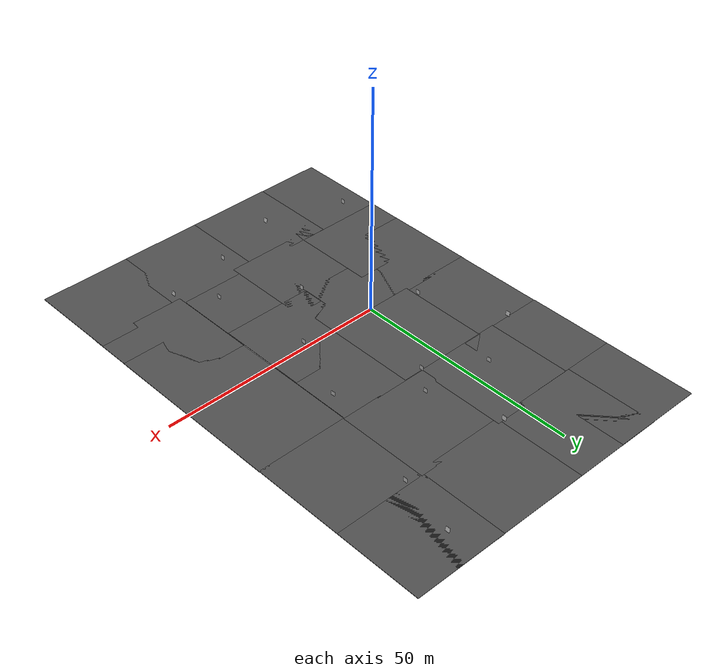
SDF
<sdf version="1.7">
 <world name="default">
  <plugin name="ros_interface_plugin" filename="librotors_gazebo_ros_interface_plugin.so"/>
  <light name="sun" type="directional">
   <pose>0 0 10 0 -0 0</pose>
   <diffuse>0.8 0.8 0.8 1</diffuse>
   <specular>0.2 0.2 0.2 1</specular>
   <attenuation>
    <range>1000</range>
    <constant>0.9</constant>
    <linear>0.01</linear>
    <quadratic>0.001</quadratic>
   </attenuation>
   <direction>-0.5 0.1 -0.9</direction>
   <spot><inner_angle>0</inner_angle><outer_angle>0</outer_angle><falloff>0</falloff></spot>
  </light>
  <physics type="ode">
   <max_step_size>0.001</max_step_size>
   <real_time_factor>1</real_time_factor>
   <real_time_update_rate>1000</real_time_update_rate>
  </physics>
  <scene><ambient>0.4 0.4 0.4 1</ambient><background>0.7 0.7 0.7 1</background><shadows>1</shadows></scene>
  <spherical_coordinates>
   <surface_model>EARTH_WGS84</surface_model>
   <latitude_deg>0</latitude_deg>
   <longitude_deg>0</longitude_deg>
   <elevation>0</elevation>
   <heading_deg>0</heading_deg>
  </spherical_coordinates>
  <model name="asphalt_plane">
   <static>1</static>
   <link name="link">
    <collision name="collision"><geometry><box><size>20 20 0.1</size></box></geometry></collision>
    <visual name="visual">
     <cast_shadows>0</cast_shadows>
     <geometry><box><size>20 20 0.1</size></box></geometry>
     <material>
      <script>
       <uri>model://asphalt_plane/materials/scripts</uri>
       <uri>model://asphalt_plane/materials/textures</uri>
       <name>vrc/asphalt</name>
      </script>
     </material>
    </visual>
    <velocity_decay><linear>0</linear><angular>0</angular></velocity_decay>
   </link>
   <pose>0.030437 -3.13546 0 0 -0 0</pose>
  </model>
  <model name="asphalt_plane_0">
   <static>1</static>
   <link name="link">
    <collision name="collision"><geometry><box><size>20 20 0.1</size></box></geometry></collision>
    <visual name="visual">
     <cast_shadows>0</cast_shadows>
     <geometry><box><size>20 20 0.1</size></box></geometry>
     <material>
      <script>
       <uri>model://asphalt_plane/materials/scripts</uri>
       <uri>model://asphalt_plane/materials/textures</uri>
       <name>vrc/asphalt</name>
      </script>
     </material>
    </visual>
    <velocity_decay><linear>0</linear><angular>0</angular></velocity_decay>
   </link>
   <pose>0.092637 9.86851 0 0 -0 0</pose>
  </model>
  <model name="asphalt_plane_1">
   <static>1</static>
   <link name="link">
    <collision name="collision"><geometry><box><size>20 20 0.1</size></box></geometry></collision>
    <visual name="visual">
     <cast_shadows>0</cast_shadows>
     <geometry><box><size>20 20 0.1</size></box></geometry>
     <material>
      <script>
       <uri>model://asphalt_plane/materials/scripts</uri>
       <uri>model://asphalt_plane/materials/textures</uri>
       <name>vrc/asphalt</name>
      </script>
     </material>
    </visual>
    <velocity_decay><linear>0</linear><angular>0</angular></velocity_decay>
   </link>
   <pose>15.4977 10 0 0 -0 0</pose>
  </model>
  <model name="asphalt_plane_2">
   <static>1</static>
   <link name="link">
    <collision name="collision"><geometry><box><size>20 20 0.1</size></box></geometry></collision>
    <visual name="visual">
     <cast_shadows>0</cast_shadows>
     <geometry><box><size>20 20 0.1</size></box></geometry>
     <material>
      <script>
       <uri>model://asphalt_plane/materials/scripts</uri>
       <uri>model://asphalt_plane/materials/textures</uri>
       <name>vrc/asphalt</name>
      </script>
     </material>
    </visual>
    <velocity_decay><linear>0</linear><angular>0</angular></velocity_decay>
   </link>
   <pose>1.64254 -18.7562 0 0 -0 0</pose>
  </model>
  <model name="asphalt_plane_3">
   <static>1</static>
   <link name="link">
    <collision name="collision"><geometry><box><size>20 20 0.1</size></box></geometry></collision>
    <visual name="visual">
     <cast_shadows>0</cast_shadows>
     <geometry><box><size>20 20 0.1</size></box></geometry>
     <material>
      <script>
       <uri>model://asphalt_plane/materials/scripts</uri>
       <uri>model://asphalt_plane/materials/textures</uri>
       <name>vrc/asphalt</name>
      </script>
     </material>
    </visual>
    <velocity_decay><linear>0</linear><angular>0</angular></velocity_decay>
   </link>
   <pose>15.5136 -18.7124 0 0 -0 0</pose>
  </model>
  <model name="asphalt_plane_4">
   <static>1</static>
   <link name="link">
    <collision name="collision"><geometry><box><size>20 20 0.1</size></box></geometry></collision>
    <visual name="visual">
     <cast_shadows>0</cast_shadows>
     <geometry><box><size>20 20 0.1</size></box></geometry>
     <material>
      <script>
       <uri>model://asphalt_plane/materials/scripts</uri>
       <uri>model://asphalt_plane/materials/textures</uri>
       <name>vrc/asphalt</name>
      </script>
     </material>
    </visual>
    <velocity_decay><linear>0</linear><angular>0</angular></velocity_decay>
   </link>
   <pose>15.4321 -3.44172 0 0 -0 0</pose>
  </model>
  <gravity>0 0 -9.8</gravity>
  <magnetic_field>6e-06 2.3e-05 -4.2e-05</magnetic_field>
  <atmosphere type="adiabatic"/>
  <model name="asphalt_plane_0_clone">
   <static>1</static>
   <link name="link">
    <collision name="collision"><geometry><box><size>20 20 0.1</size></box></geometry></collision>
    <visual name="visual">
     <cast_shadows>0</cast_shadows>
     <geometry><box><size>20 20 0.1</size></box></geometry>
     <material>
      <script>
       <uri>model://asphalt_plane/materials/scripts</uri>
       <uri>model://asphalt_plane/materials/textures</uri>
       <name>vrc/asphalt</name>
      </script>
     </material>
    </visual>
    <velocity_decay><linear>0</linear><angular>0</angular></velocity_decay>
   </link>
   <pose>-15.781 10.0321 0 0 -0 0</pose>
  </model>
  <model name="asphalt_plane_0_clone_clone">
   <static>1</static>
   <link name="link">
    <collision name="collision"><geometry><box><size>20 20 0.1</size></box></geometry></collision>
    <visual name="visual">
     <cast_shadows>0</cast_shadows>
     <geometry><box><size>20 20 0.1</size></box></geometry>
     <material>
      <script>
       <uri>model://asphalt_plane/materials/scripts</uri>
       <uri>model://asphalt_plane/materials/textures</uri>
       <name>vrc/asphalt</name>
      </script>
     </material>
    </visual>
    <velocity_decay><linear>0</linear><angular>0</angular></velocity_decay>
   </link>
   <pose>-15.835 -9.31186 0 0 -0 0</pose>
  </model>
  <model name="asphalt_plane_0_clone_clone_clone">
   <static>1</static>
   <link name="link">
    <collision name="collision"><geometry><box><size>20 20 0.1</size></box></geometry></collision>
    <visual name="visual">
     <cast_shadows>0</cast_shadows>
     <geometry><box><size>20 20 0.1</size></box></geometry>
     <material>
      <script>
       <uri>model://asphalt_plane/materials/scripts</uri>
       <uri>model://asphalt_plane/materials/textures</uri>
       <name>vrc/asphalt</name>
      </script>
     </material>
    </visual>
    <velocity_decay><linear>0</linear><angular>0</angular></velocity_decay>
   </link>
   <pose>-15.8269 -18.8748 0 0 -0 0</pose>
  </model>
  <model name="asphalt_plane_1_clone">
   <static>1</static>
   <link name="link">
    <collision name="collision"><geometry><box><size>20 20 0.1</size></box></geometry></collision>
    <visual name="visual">
     <cast_shadows>0</cast_shadows>
     <geometry><box><size>20 20 0.1</size></box></geometry>
     <material>
      <script>
       <uri>model://asphalt_plane/materials/scripts</uri>
       <uri>model://asphalt_plane/materials/textures</uri>
       <name>vrc/asphalt</name>
      </script>
     </material>
    </visual>
    <velocity_decay><linear>0</linear><angular>0</angular></velocity_decay>
   </link>
   <pose>35.5662 9.99458 0 0 -0 0</pose>
  </model>
  <model name="asphalt_plane_4_clone">
   <static>1</static>
   <link name="link">
    <collision name="collision"><geometry><box><size>20 20 0.1</size></box></geometry></collision>
    <visual name="visual">
     <cast_shadows>0</cast_shadows>
     <geometry><box><size>20 20 0.1</size></box></geometry>
     <material>
      <script>
       <uri>model://asphalt_plane/materials/scripts</uri>
       <uri>model://asphalt_plane/materials/textures</uri>
       <name>vrc/asphalt</name>
      </script>
     </material>
    </visual>
    <velocity_decay><linear>0</linear><angular>0</angular></velocity_decay>
   </link>
   <pose>35.602 -9.85933 0 0 -0 0</pose>
  </model>
  <model name="asphalt_plane_3_clone">
   <static>1</static>
   <link name="link">
    <collision name="collision"><geometry><box><size>20 20 0.1</size></box></geometry></collision>
    <visual name="visual">
     <cast_shadows>0</cast_shadows>
     <geometry><box><size>20 20 0.1</size></box></geometry>
     <material>
      <script>
       <uri>model://asphalt_plane/materials/scripts</uri>
       <uri>model://asphalt_plane/materials/textures</uri>
       <name>vrc/asphalt</name>
      </script>
     </material>
    </visual>
    <velocity_decay><linear>0</linear><angular>0</angular></velocity_decay>
   </link>
   <pose>35.5757 -18.5877 0 0 -0 0</pose>
  </model>
  <model name="asphalt_plane_1_clone_clone">
   <static>1</static>
   <link name="link">
    <collision name="collision"><geometry><box><size>20 20 0.1</size></box></geometry></collision>
    <visual name="visual">
     <cast_shadows>0</cast_shadows>
     <geometry><box><size>20 20 0.1</size></box></geometry>
     <material>
      <script>
       <uri>model://asphalt_plane/materials/scripts</uri>
       <uri>model://asphalt_plane/materials/textures</uri>
       <name>vrc/asphalt</name>
      </script>
     </material>
    </visual>
    <velocity_decay><linear>0</linear><angular>0</angular></velocity_decay>
   </link>
   <pose>35.5159 29.6744 0 0 -0 0</pose>
  </model>
  <model name="asphalt_plane_1_clone_clone_clone">
   <static>1</static>
   <link name="link">
    <collision name="collision"><geometry><box><size>20 20 0.1</size></box></geometry></collision>
    <visual name="visual">
     <cast_shadows>0</cast_shadows>
     <geometry><box><size>20 20 0.1</size></box></geometry>
     <material>
      <script>
       <uri>model://asphalt_plane/materials/scripts</uri>
       <uri>model://asphalt_plane/materials/textures</uri>
       <name>vrc/asphalt</name>
      </script>
     </material>
    </visual>
    <velocity_decay><linear>0</linear><angular>0</angular></velocity_decay>
   </link>
   <pose>15.6888 29.7849 0 0 -0 0</pose>
  </model>
  <model name="asphalt_plane_1_clone_clone_clone_clone">
   <static>1</static>
   <link name="link">
    <collision name="collision"><geometry><box><size>20 20 0.1</size></box></geometry></collision>
    <visual name="visual">
     <cast_shadows>0</cast_shadows>
     <geometry><box><size>20 20 0.1</size></box></geometry>
     <material>
      <script>
       <uri>model://asphalt_plane/materials/scripts</uri>
       <uri>model://asphalt_plane/materials/textures</uri>
       <name>vrc/asphalt</name>
      </script>
     </material>
    </visual>
    <velocity_decay><linear>0</linear><angular>0</angular></velocity_decay>
   </link>
   <pose>-3.79661 29.8348 0 0 -0 0</pose>
  </model>
  <model name="asphalt_plane_1_clone_clone_clone_clone_clone">
   <static>1</static>
   <link name="link">
    <collision name="collision"><geometry><box><size>20 20 0.1</size></box></geometry></collision>
    <visual name="visual">
     <cast_shadows>0</cast_shadows>
     <geometry><box><size>20 20 0.1</size></box></geometry>
     <material>
      <script>
       <uri>model://asphalt_plane/materials/scripts</uri>
       <uri>model://asphalt_plane/materials/textures</uri>
       <name>vrc/asphalt</name>
      </script>
     </material>
    </visual>
    <velocity_decay><linear>0</linear><angular>0</angular></velocity_decay>
   </link>
   <pose>-15.8734 30.0233 0 0 -0 0</pose>
  </model>
  <model name="asphalt_plane_1_clone_clone_clone_0">
   <static>1</static>
   <link name="link">
    <collision name="collision"><geometry><box><size>20 20 0.1</size></box></geometry></collision>
    <visual name="visual">
     <cast_shadows>0</cast_shadows>
     <geometry><box><size>20 20 0.1</size></box></geometry>
     <material>
      <script>
       <uri>model://asphalt_plane/materials/scripts</uri>
       <uri>model://asphalt_plane/materials/textures</uri>
       <name>vrc/asphalt</name>
      </script>
     </material>
    </visual>
    <velocity_decay><linear>0</linear><angular>0</angular></velocity_decay>
   </link>
   <pose>35.1617 48.6361 0 0 -0 0</pose>
  </model>
  <model name="asphalt_plane_1_clone_clone_clone_clone_0">
   <static>1</static>
   <link name="link">
    <collision name="collision"><geometry><box><size>20 20 0.1</size></box></geometry></collision>
    <visual name="visual">
     <cast_shadows>0</cast_shadows>
     <geometry><box><size>20 20 0.1</size></box></geometry>
     <material>
      <script>
       <uri>model://asphalt_plane/materials/scripts</uri>
       <uri>model://asphalt_plane/materials/textures</uri>
       <name>vrc/asphalt</name>
      </script>
     </material>
    </visual>
    <velocity_decay><linear>0</linear><angular>0</angular></velocity_decay>
   </link>
   <pose>15.4095 48.6123 0 0 -0 0</pose>
  </model>
  <model name="asphalt_plane_1_clone_clone_clone_clone_clone_0">
   <static>1</static>
   <link name="link">
    <collision name="collision"><geometry><box><size>20 20 0.1</size></box></geometry></collision>
    <visual name="visual">
     <cast_shadows>0</cast_shadows>
     <geometry><box><size>20 20 0.1</size></box></geometry>
     <material>
      <script>
       <uri>model://asphalt_plane/materials/scripts</uri>
       <uri>model://asphalt_plane/materials/textures</uri>
       <name>vrc/asphalt</name>
      </script>
     </material>
    </visual>
    <velocity_decay><linear>0</linear><angular>0</angular></velocity_decay>
   </link>
   <pose>-4.56814 48.6146 0 0 -0 0</pose>
  </model>
  <model name="asphalt_plane_1_clone_clone_clone_clone_clone_clone">
   <static>1</static>
   <link name="link">
    <collision name="collision"><geometry><box><size>20 20 0.1</size></box></geometry></collision>
    <visual name="visual">
     <cast_shadows>0</cast_shadows>
     <geometry><box><size>20 20 0.1</size></box></geometry>
     <material>
      <script>
       <uri>model://asphalt_plane/materials/scripts</uri>
       <uri>model://asphalt_plane/materials/textures</uri>
       <name>vrc/asphalt</name>
      </script>
     </material>
    </visual>
    <velocity_decay><linear>0</linear><angular>0</angular></velocity_decay>
   </link>
   <pose>-15.8753 48.5719 0 0 -0 0</pose>
  </model>
  <model name="Apriltag36_11_00000">
   <link name="main">
    <visual name="main_Visual">
     <geometry><box><size>1 1 0.01</size></box></geometry>
     <material>
      <script>
       <uri>model://Apriltag36_11_00000/materials/scripts</uri>
       <uri>model://Apriltag36_11_00000/materials/textures</uri>
       <name>Apriltag36_11_00000</name>
      </script>
     </material>
    </visual>
   </link>
   <static>1</static>
   <pose>5 40 0.8 0 1.45955 0</pose>
  </model>
  <model name="Apriltag36_11_00001">
   <link name="main">
    <visual name="main_Visual">
     <geometry><box><size>1 1 0.01</size></box></geometry>
     <material>
      <script>
       <uri>model://Apriltag36_11_00001/materials/scripts</uri>
       <uri>model://Apriltag36_11_00001/materials/textures</uri>
       <name>Apriltag36_11_00001</name>
      </script>
     </material>
    </visual>
   </link>
   <static>1</static>
   <pose>6 -14 0.8 0 1.52564 0</pose>
  </model>
  <model name="Apriltag36_11_00002">
   <link name="main">
    <visual name="main_Visual">
     <geometry><box><size>1 1 0.01</size></box></geometry>
     <material>
      <script>
       <uri>model://Apriltag36_11_00002/materials/scripts</uri>
       <uri>model://Apriltag36_11_00002/materials/textures</uri>
       <name>Apriltag36_11_00002</name>
      </script>
     </material>
    </visual>
   </link>
   <static>1</static>
   <pose>17 -1 0.8 0.10062 1.56192 0.100461</pose>
  </model>
  <model name="Apriltag36_11_00003">
   <link name="main">
    <visual name="main_Visual">
     <geometry><box><size>1 1 0.01</size></box></geometry>
     <material>
      <script>
       <uri>model://Apriltag36_11_00003/materials/scripts</uri>
       <uri>model://Apriltag36_11_00003/materials/textures</uri>
       <name>Apriltag36_11_00003</name>
      </script>
     </material>
    </visual>
   </link>
   <static>1</static>
   <pose>-10 3 0.8 0 1.53505 0</pose>
  </model>
  <model name="Apriltag36_11_00004">
   <link name="main">
    <visual name="main_Visual">
     <geometry><box><size>1 1 0.01</size></box></geometry>
     <material>
      <script>
       <uri>model://Apriltag36_11_00004/materials/scripts</uri>
       <uri>model://Apriltag36_11_00004/materials/textures</uri>
       <name>Apriltag36_11_00004</name>
      </script>
     </material>
    </visual>
   </link>
   <static>1</static>
   <pose>10 25 0.8 -3.14159 1.56947 -3.14159</pose>
  </model>
  <model name="Apriltag36_11_00005">
   <link name="main">
    <visual name="main_Visual">
     <geometry><box><size>1 1 0.01</size></box></geometry>
     <material>
      <script>
       <uri>model://Apriltag36_11_00005/materials/scripts</uri>
       <uri>model://Apriltag36_11_00005/materials/textures</uri>
       <name>Apriltag36_11_00005</name>
      </script>
     </material>
    </visual>
   </link>
   <static>1</static>
   <pose>20 -23 0.8 0 1.56808 0</pose>
  </model>
  <model name="Apriltag36_11_00006">
   <link name="main">
    <visual name="main_Visual">
     <geometry><box><size>1 1 0.01</size></box></geometry>
     <material>
      <script>
       <uri>model://Apriltag36_11_00006/materials/scripts</uri>
       <uri>model://Apriltag36_11_00006/materials/textures</uri>
       <name>Apriltag36_11_00006</name>
      </script>
     </material>
    </visual>
   </link>
   <static>1</static>
   <pose>6 20 0.8 -3.14159 1.56722 -3.14159</pose>
  </model>
  <model name="Apriltag36_11_00007">
   <link name="main">
    <visual name="main_Visual">
     <geometry><box><size>1 1 0.01</size></box></geometry>
     <material>
      <script>
       <uri>model://Apriltag36_11_00007/materials/scripts</uri>
       <uri>model://Apriltag36_11_00007/materials/textures</uri>
       <name>Apriltag36_11_00007</name>
      </script>
     </material>
    </visual>
   </link>
   <static>1</static>
   <pose>-5 27 0.8 0 1.56835 0</pose>
  </model>
  <model name="Apriltag36_11_00008">
   <link name="main">
    <visual name="main_Visual">
     <geometry><box><size>1 1 0.01</size></box></geometry>
     <material>
      <script>
       <uri>model://Apriltag36_11_00008/materials/scripts</uri>
       <uri>model://Apriltag36_11_00008/materials/textures</uri>
       <name>Apriltag36_11_00008</name>
      </script>
     </material>
    </visual>
   </link>
   <static>1</static>
   <pose>23 14 0.8 3.04947 1.54033 3.14158</pose>
  </model>
  <model name="Apriltag36_11_00009">
   <link name="main">
    <visual name="main_Visual">
     <geometry><box><size>1 1 0.01</size></box></geometry>
     <material>
      <script>
       <uri>model://Apriltag36_11_00009/materials/scripts</uri>
       <uri>model://Apriltag36_11_00009/materials/textures</uri>
       <name>Apriltag36_11_00009</name>
      </script>
     </material>
    </visual>
   </link>
   <static>1</static>
   <pose>11 -33 0.570454 0 1.49194 0</pose>
  </model>
  <model name="asphalt_plane_1_clone_clone_clone_0_clone">
   <static>1</static>
   <link name="link">
    <collision name="collision"><geometry><box><size>20 20 0.1</size></box></geometry></collision>
    <visual name="visual">
     <cast_shadows>0</cast_shadows>
     <geometry><box><size>20 20 0.1</size></box></geometry>
     <material>
      <script>
       <uri>model://asphalt_plane/materials/scripts</uri>
       <uri>model://asphalt_plane/materials/textures</uri>
       <name>vrc/asphalt</name>
      </script>
     </material>
    </visual>
    <velocity_decay><linear>0</linear><angular>0</angular></velocity_decay>
   </link>
   <pose>35.5105 48.6702 0 0 -0 0</pose>
  </model>
  <model name="asphalt_plane_3_clone_clone">
   <static>1</static>
   <link name="link">
    <collision name="collision"><geometry><box><size>20 20 0.1</size></box></geometry></collision>
    <visual name="visual">
     <cast_shadows>0</cast_shadows>
     <geometry><box><size>20 20 0.1</size></box></geometry>
     <material>
      <script>
       <uri>model://asphalt_plane/materials/scripts</uri>
       <uri>model://asphalt_plane/materials/textures</uri>
       <name>vrc/asphalt</name>
      </script>
     </material>
    </visual>
    <velocity_decay><linear>0</linear><angular>0</angular></velocity_decay>
   </link>
   <pose>35.5254 -36.8042 0 0 -0 0</pose>
  </model>
  <model name="asphalt_plane_3_clone_clone_clone">
   <static>1</static>
   <link name="link">
    <collision name="collision"><geometry><box><size>20 20 0.1</size></box></geometry></collision>
    <visual name="visual">
     <cast_shadows>0</cast_shadows>
     <geometry><box><size>20 20 0.1</size></box></geometry>
     <material>
      <script>
       <uri>model://asphalt_plane/materials/scripts</uri>
       <uri>model://asphalt_plane/materials/textures</uri>
       <name>vrc/asphalt</name>
      </script>
     </material>
    </visual>
    <velocity_decay><linear>0</linear><angular>0</angular></velocity_decay>
   </link>
   <pose>17.516 -36.8396 0 0 -0 0</pose>
  </model>
  <model name="asphalt_plane_3_clone_clone_clone_clone">
   <static>1</static>
   <link name="link">
    <collision name="collision"><geometry><box><size>20 20 0.1</size></box></geometry></collision>
    <visual name="visual">
     <cast_shadows>0</cast_shadows>
     <geometry><box><size>20 20 0.1</size></box></geometry>
     <material>
      <script>
       <uri>model://asphalt_plane/materials/scripts</uri>
       <uri>model://asphalt_plane/materials/textures</uri>
       <name>vrc/asphalt</name>
      </script>
     </material>
    </visual>
    <velocity_decay><linear>0</linear><angular>0</angular></velocity_decay>
   </link>
   <pose>-1.45807 -36.8185 0 0 -0 0</pose>
  </model>
  <model name="asphalt_plane_3_clone_clone_clone_clone_clone">
   <static>1</static>
   <link name="link">
    <collision name="collision"><geometry><box><size>20 20 0.1</size></box></geometry></collision>
    <visual name="visual">
     <cast_shadows>0</cast_shadows>
     <geometry><box><size>20 20 0.1</size></box></geometry>
     <material>
      <script>
       <uri>model://asphalt_plane/materials/scripts</uri>
       <uri>model://asphalt_plane/materials/textures</uri>
       <name>vrc/asphalt</name>
      </script>
     </material>
    </visual>
    <velocity_decay><linear>0</linear><angular>0</angular></velocity_decay>
   </link>
   <pose>-15.8288 -36.7821 0 0 -0 0</pose>
  </model>
  <light name="user_directional_light_0" type="directional">
   <pose>-17.8735 -39.7068 1 0 -0 0</pose>
   <diffuse>0.5 0.5 0.5 1</diffuse>
   <specular>0.1 0.1 0.1 1</specular>
   <direction>0.1 0.1 -0.9</direction>
   <attenuation>
    <range>20</range>
    <constant>0.5</constant>
    <linear>0.01</linear>
    <quadratic>0.001</quadratic>
   </attenuation>
  </light>
  <light name="user_directional_light_1" type="directional">
   <pose>5.84028 -38.5544 1 0 -0 0</pose>
   <diffuse>0.5 0.5 0.5 1</diffuse>
   <specular>0.1 0.1 0.1 1</specular>
   <direction>0.1 0.1 -0.9</direction>
   <attenuation>
    <range>20</range>
    <constant>0.5</constant>
    <linear>0.01</linear>
    <quadratic>0.001</quadratic>
   </attenuation>
  </light>
  <light name="user_directional_light_2" type="directional">
   <pose>27.0104 -36.2247 1 0 -0 0</pose>
   <diffuse>0.5 0.5 0.5 1</diffuse>
   <specular>0.1 0.1 0.1 1</specular>
   <direction>0.1 0.1 -0.9</direction>
   <attenuation>
    <range>20</range>
    <constant>0.5</constant>
    <linear>0.01</linear>
    <quadratic>0.001</quadratic>
   </attenuation>
  </light>
  <light name="user_directional_light_3" type="directional">
   <pose>-18.5532 43.827 1 0 -0 0</pose>
   <diffuse>0.5 0.5 0.5 1</diffuse>
   <specular>0.1 0.1 0.1 1</specular>
   <direction>0.1 0.1 -0.9</direction>
   <attenuation>
    <range>20</range>
    <constant>0.5</constant>
    <linear>0.01</linear>
    <quadratic>0.001</quadratic>
   </attenuation>
  </light>
  <light name="user_directional_light_4" type="directional">
   <pose>18.8611 39.9089 1 0 -0 0</pose>
   <diffuse>0.5 0.5 0.5 1</diffuse>
   <specular>0.1 0.1 0.1 1</specular>
   <direction>0.1 0.1 -0.9</direction>
   <attenuation>
    <range>20</range>
    <constant>0.5</constant>
    <linear>0.01</linear>
    <quadratic>0.001</quadratic>
   </attenuation>
  </light>
  <light name="user_directional_light_5" type="directional">
   <pose>6.08034 41.0146 1 0 -0 0</pose>
   <diffuse>0.5 0.5 0.5 1</diffuse>
   <specular>0.1 0.1 0.1 1</specular>
   <direction>0.1 0.1 -0.9</direction>
   <attenuation>
    <range>20</range>
    <constant>0.5</constant>
    <linear>0.01</linear>
    <quadratic>0.001</quadratic>
   </attenuation>
  </light>
  <light name="user_directional_light_6" type="directional">
   <pose>5.04802 5.77139 1 0 -0 0</pose>
   <diffuse>0.5 0.5 0.5 1</diffuse>
   <specular>0.1 0.1 0.1 1</specular>
   <direction>0.1 0.1 -0.9</direction>
   <attenuation>
    <range>20</range>
    <constant>0.5</constant>
    <linear>0.01</linear>
    <quadratic>0.001</quadratic>
   </attenuation>
  </light>
  <light name="user_directional_light_7" type="directional">
   <pose>7.03064 -17.5414 1 0 -0 0</pose>
   <diffuse>0.5 0.5 0.5 1</diffuse>
   <specular>0.1 0.1 0.1 1</specular>
   <direction>0.1 0.1 -0.9</direction>
   <attenuation>
    <range>20</range>
    <constant>0.5</constant>
    <linear>0.01</linear>
    <quadratic>0.001</quadratic>
   </attenuation>
  </light>
  <light name="user_directional_light_8" type="directional">
   <pose>29.3789 50.0693 1 0 -0 0</pose>
   <diffuse>0.5 0.5 0.5 1</diffuse>
   <specular>0.1 0.1 0.1 1</specular>
   <direction>0.1 0.1 -0.9</direction>
   <attenuation>
    <range>20</range>
    <constant>0.5</constant>
    <linear>0.01</linear>
    <quadratic>0.001</quadratic>
   </attenuation>
  </light>
  <light name="user_directional_light_9" type="directional">
   <pose>-10.018 49.7945 1 0 -0 0</pose>
   <diffuse>0.5 0.5 0.5 1</diffuse>
   <specular>0.1 0.1 0.1 1</specular>
   <direction>0.1 0.1 -0.9</direction>
   <attenuation>
    <range>20</range>
    <constant>0.5</constant>
    <linear>0.01</linear>
    <quadratic>0.001</quadratic>
   </attenuation>
  </light>
  <light name="user_directional_light_10" type="directional">
   <pose>-16.1998 -27.8524 1 0 -0 0</pose>
   <diffuse>0.5 0.5 0.5 1</diffuse>
   <specular>0.1 0.1 0.1 1</specular>
   <direction>0.1 0.1 -0.9</direction>
   <attenuation>
    <range>20</range>
    <constant>0.5</constant>
    <linear>0.01</linear>
    <quadratic>0.001</quadratic>
   </attenuation>
  </light>
  <light name="user_directional_light_11" type="directional">
   <pose>32.5337 23.9157 1 0 -0 0</pose>
   <diffuse>0.5 0.5 0.5 1</diffuse>
   <specular>0.1 0.1 0.1 1</specular>
   <direction>0.1 0.1 -0.9</direction>
   <attenuation>
    <range>20</range>
    <constant>0.5</constant>
    <linear>0.01</linear>
    <quadratic>0.001</quadratic>
   </attenuation>
  </light>
  <light name="user_directional_light_12" type="directional">
   <pose>19.0096 5.05745 1 0 -0 0</pose>
   <diffuse>0.5 0.5 0.5 1</diffuse>
   <specular>0.1 0.1 0.1 1</specular>
   <direction>0.1 0.1 -0.9</direction>
   <attenuation>
    <range>20</range>
    <constant>0.5</constant>
    <linear>0.01</linear>
    <quadratic>0.001</quadratic>
   </attenuation>
  </light>
  <light name="user_directional_light_13" type="directional">
   <pose>4.43585 -1.97404 1 0 -0 0</pose>
   <diffuse>0.5 0.5 0.5 1</diffuse>
   <specular>0.1 0.1 0.1 1</specular>
   <direction>0.1 0.1 -0.9</direction>
   <attenuation>
    <range>20</range>
    <constant>0.5</constant>
    <linear>0.01</linear>
    <quadratic>0.001</quadratic>
   </attenuation>
  </light>
  <model name="Apriltag36_11_00010">
   <link name="main">
    <visual name="main_Visual">
     <geometry><box><size>1 1 0.01</size></box></geometry>
     <material>
      <script>
       <uri>model://Apriltag36_11_00010/materials/scripts</uri>
       <uri>model://Apriltag36_11_00010/materials/textures</uri>
       <name>Apriltag36_11_00010</name>
      </script>
     </material>
    </visual>
   </link>
   <static>1</static>
   <pose>26 -30 0.8 0 1.43563 0</pose>
  </model>
  <model name="Apriltag36_11_00011">
   <link name="main">
    <visual name="main_Visual">
     <geometry><box><size>1 1 0.01</size></box></geometry>
     <material>
      <script>
       <uri>model://Apriltag36_11_00011/materials/scripts</uri>
       <uri>model://Apriltag36_11_00011/materials/textures</uri>
       <name>Apriltag36_11_00011</name>
      </script>
     </material>
    </visual>
   </link>
   <static>1</static>
   <pose>-21 -31 0.8 0 1.5498 0</pose>
  </model>
  <model name="Apriltag36_11_00012">
   <link name="main">
    <visual name="main_Visual">
     <geometry><box><size>1 1 0.01</size></box></geometry>
     <material>
      <script>
       <uri>model://Apriltag36_11_00012/materials/scripts</uri>
       <uri>model://Apriltag36_11_00012/materials/textures</uri>
       <name>Apriltag36_11_00012</name>
      </script>
     </material>
    </visual>
   </link>
   <static>1</static>
   <pose>-4 -37 0.8 0 1.35933 0</pose>
  </model>
  <model name="Apriltag36_11_00013">
   <link name="main">
    <visual name="main_Visual">
     <geometry><box><size>1 1 0.01</size></box></geometry>
     <material>
      <script>
       <uri>model://Apriltag36_11_00013/materials/scripts</uri>
       <uri>model://Apriltag36_11_00013/materials/textures</uri>
       <name>Apriltag36_11_00013</name>
      </script>
     </material>
    </visual>
   </link>
   <static>1</static>
   <pose>32 52 0.8 0 1.37691 0</pose>
  </model>
  <model name="Apriltag36_11_00014">
   <link name="main">
    <visual name="main_Visual">
     <geometry><box><size>1 1 0.01</size></box></geometry>
     <material>
      <script>
       <uri>model://Apriltag36_11_00014/materials/scripts</uri>
       <uri>model://Apriltag36_11_00014/materials/textures</uri>
       <name>Apriltag36_11_00014</name>
      </script>
     </material>
    </visual>
   </link>
   <static>1</static>
   <pose>-18 20 0.8 0 1.41692 0</pose>
  </model>
  <model name="Apriltag36_11_00015">
   <link name="main">
    <visual name="main_Visual">
     <geometry><box><size>1 1 0.01</size></box></geometry>
     <material>
      <script>
       <uri>model://Apriltag36_11_00015/materials/scripts</uri>
       <uri>model://Apriltag36_11_00015/materials/textures</uri>
       <name>Apriltag36_11_00015</name>
      </script>
     </material>
    </visual>
   </link>
   <static>1</static>
   <pose>29 39 0.8 0 1.54493 0</pose>
  </model>
 </world>
</sdf>
